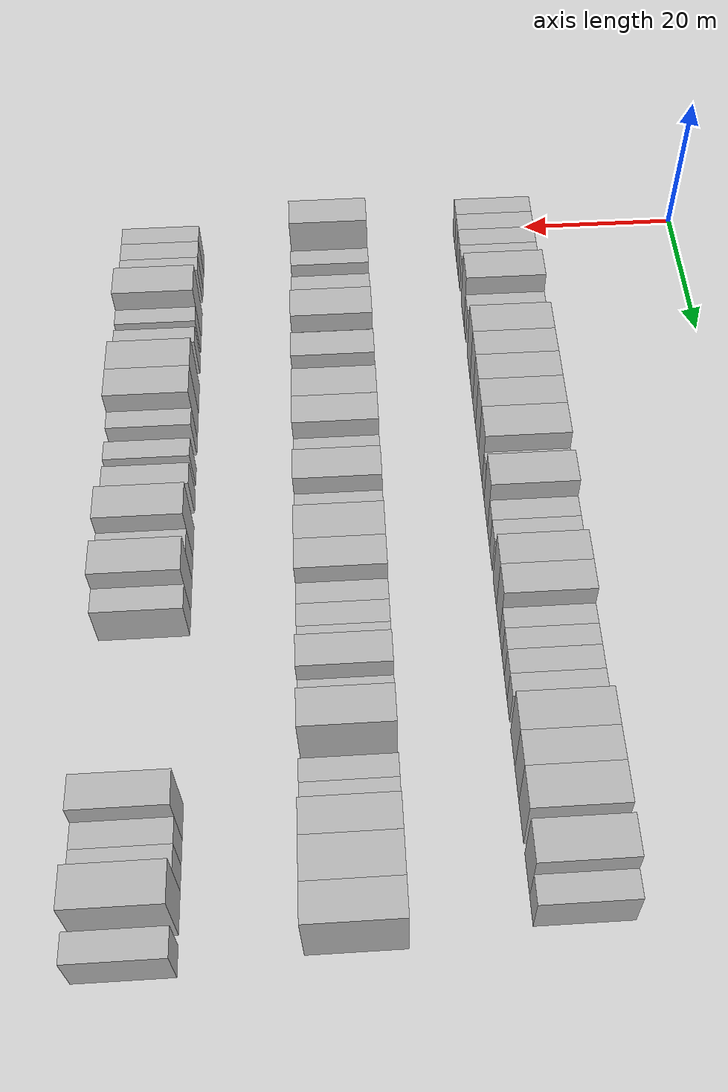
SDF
<sdf version="1.6">
 <world name="default">
  <model name="building_93">
   <static>1</static>
   <pose>25.0000 1.7924 0 0.000000 0.000000 0.000000</pose>
   <link name="link">
    <pose>0 0 3.00 0 0 0</pose>
    <collision name="collision"><geometry><box><size>10.0000 2.9085 6.0000</size></box></geometry></collision>
    <visual name="visual">
     <cast_shadows>0</cast_shadows>
     <geometry><box><size>10.0000 2.9085 6.0000</size></box></geometry>
     <material>
      <script>
       <uri>model://HANNAS_wall/materials/scripts</uri>
       <uri>model://HANNAS_wall/materials/textures</uri>
       <name>vrc/HANNAS_wall</name>
      </script>
     </material>
    </visual>
   </link>
  </model>
  <model name="building_94">
   <static>1</static>
   <pose>25.0000 4.6945 0 0.000000 0.000000 0.000000</pose>
   <link name="link">
    <pose>0 0 3.00 0 0 0</pose>
    <collision name="collision"><geometry><box><size>10.0000 2.8958 6.0000</size></box></geometry></collision>
    <visual name="visual">
     <cast_shadows>0</cast_shadows>
     <geometry><box><size>10.0000 2.8958 6.0000</size></box></geometry>
     <material>
      <script>
       <uri>model://HANNAS_wall/materials/scripts</uri>
       <uri>model://HANNAS_wall/materials/textures</uri>
       <name>vrc/HANNAS_wall</name>
      </script>
     </material>
    </visual>
   </link>
  </model>
  <model name="building_95">
   <static>1</static>
   <pose>25.0000 7.5774 0 0.000000 0.000000 0.000000</pose>
   <link name="link">
    <pose>0 0 3.00 0 0 0</pose>
    <collision name="collision"><geometry><box><size>10.0000 2.8701 6.0000</size></box></geometry></collision>
    <visual name="visual">
     <cast_shadows>0</cast_shadows>
     <geometry><box><size>10.0000 2.8701 6.0000</size></box></geometry>
     <material>
      <script>
       <uri>model://HANNAS_wall/materials/scripts</uri>
       <uri>model://HANNAS_wall/materials/textures</uri>
       <name>vrc/HANNAS_wall</name>
      </script>
     </material>
    </visual>
   </link>
  </model>
  <model name="building_96">
   <static>1</static>
   <pose>25.0000 10.2532 0 0.000000 0.000000 0.000000</pose>
   <link name="link">
    <pose>0 0 3.00 0 0 0</pose>
    <collision name="collision"><geometry><box><size>10.0000 2.4816 6.0000</size></box></geometry></collision>
    <visual name="visual">
     <cast_shadows>0</cast_shadows>
     <geometry><box><size>10.0000 2.4816 6.0000</size></box></geometry>
     <material>
      <script>
       <uri>model://HANNAS_wall/materials/scripts</uri>
       <uri>model://HANNAS_wall/materials/textures</uri>
       <name>vrc/HANNAS_wall</name>
      </script>
     </material>
    </visual>
   </link>
  </model>
  <model name="building_97">
   <static>1</static>
   <pose>25.0000 15.6917 0 0.000000 0.000000 0.000000</pose>
   <link name="link">
    <pose>0 0 4.50 0 0 0</pose>
    <collision name="collision"><geometry><box><size>10.0000 4.3954 9.0000</size></box></geometry></collision>
    <visual name="visual">
     <cast_shadows>0</cast_shadows>
     <geometry><box><size>10.0000 4.3954 9.0000</size></box></geometry>
     <material>
      <script>
       <uri>model://HANNAS_wall/materials/scripts</uri>
       <uri>model://HANNAS_wall/materials/textures</uri>
       <name>vrc/HANNAS_wall</name>
      </script>
     </material>
    </visual>
   </link>
  </model>
  <model name="building_98">
   <static>1</static>
   <pose>25.0000 19.2215 0 0.000000 0.000000 0.000000</pose>
   <link name="link">
    <pose>0 0 3.00 0 0 0</pose>
    <collision name="collision"><geometry><box><size>10.0000 2.6641 6.0000</size></box></geometry></collision>
    <visual name="visual">
     <cast_shadows>0</cast_shadows>
     <geometry><box><size>10.0000 2.6641 6.0000</size></box></geometry>
     <material>
      <script>
       <uri>model://HANNAS_wall/materials/scripts</uri>
       <uri>model://HANNAS_wall/materials/textures</uri>
       <name>vrc/HANNAS_wall</name>
      </script>
     </material>
    </visual>
   </link>
  </model>
  <model name="building_99">
   <static>1</static>
   <pose>25.0000 24.6875 0 0.000000 0.000000 0.000000</pose>
   <link name="link">
    <pose>0 0 4.50 0 0 0</pose>
    <collision name="collision"><geometry><box><size>10.0000 4.2679 9.0000</size></box></geometry></collision>
    <visual name="visual">
     <cast_shadows>0</cast_shadows>
     <geometry><box><size>10.0000 4.2679 9.0000</size></box></geometry>
     <material>
      <script>
       <uri>model://HANNAS_wall/materials/scripts</uri>
       <uri>model://HANNAS_wall/materials/textures</uri>
       <name>vrc/HANNAS_wall</name>
      </script>
     </material>
    </visual>
   </link>
  </model>
  <model name="building_100">
   <static>1</static>
   <pose>25.0000 28.6731 0 0.000000 0.000000 0.000000</pose>
   <link name="link">
    <pose>0 0 4.50 0 0 0</pose>
    <collision name="collision"><geometry><box><size>10.0000 3.7032 9.0000</size></box></geometry></collision>
    <visual name="visual">
     <cast_shadows>0</cast_shadows>
     <geometry><box><size>10.0000 3.7032 9.0000</size></box></geometry>
     <material>
      <script>
       <uri>model://HANNAS_wall/materials/scripts</uri>
       <uri>model://HANNAS_wall/materials/textures</uri>
       <name>vrc/HANNAS_wall</name>
      </script>
     </material>
    </visual>
   </link>
  </model>
  <model name="building_101">
   <static>1</static>
   <pose>25.0000 32.4304 0 0.000000 0.000000 0.000000</pose>
   <link name="link">
    <pose>0 0 4.50 0 0 0</pose>
    <collision name="collision"><geometry><box><size>10.0000 3.8114 9.0000</size></box></geometry></collision>
    <visual name="visual">
     <cast_shadows>0</cast_shadows>
     <geometry><box><size>10.0000 3.8114 9.0000</size></box></geometry>
     <material>
      <script>
       <uri>model://HANNAS_wall/materials/scripts</uri>
       <uri>model://HANNAS_wall/materials/textures</uri>
       <name>vrc/HANNAS_wall</name>
      </script>
     </material>
    </visual>
   </link>
  </model>
  <model name="building_102">
   <static>1</static>
   <pose>25.0000 36.4106 0 0.000000 0.000000 0.000000</pose>
   <link name="link">
    <pose>0 0 4.50 0 0 0</pose>
    <collision name="collision"><geometry><box><size>10.0000 4.1490 9.0000</size></box></geometry></collision>
    <visual name="visual">
     <cast_shadows>0</cast_shadows>
     <geometry><box><size>10.0000 4.1490 9.0000</size></box></geometry>
     <material>
      <script>
       <uri>model://HANNAS_wall/materials/scripts</uri>
       <uri>model://HANNAS_wall/materials/textures</uri>
       <name>vrc/HANNAS_wall</name>
      </script>
     </material>
    </visual>
   </link>
  </model>
  <model name="building_103">
   <static>1</static>
   <pose>25.0000 40.6841 0 0.000000 0.000000 0.000000</pose>
   <link name="link">
    <pose>0 0 4.50 0 0 0</pose>
    <collision name="collision"><geometry><box><size>10.0000 4.3981 9.0000</size></box></geometry></collision>
    <visual name="visual">
     <cast_shadows>0</cast_shadows>
     <geometry><box><size>10.0000 4.3981 9.0000</size></box></geometry>
     <material>
      <script>
       <uri>model://HANNAS_wall/materials/scripts</uri>
       <uri>model://HANNAS_wall/materials/textures</uri>
       <name>vrc/HANNAS_wall</name>
      </script>
     </material>
    </visual>
   </link>
  </model>
  <model name="building_104">
   <static>1</static>
   <pose>25.0000 44.1431 0 0.000000 0.000000 0.000000</pose>
   <link name="link">
    <pose>0 0 3.00 0 0 0</pose>
    <collision name="collision"><geometry><box><size>10.0000 2.5199 6.0000</size></box></geometry></collision>
    <visual name="visual">
     <cast_shadows>0</cast_shadows>
     <geometry><box><size>10.0000 2.5199 6.0000</size></box></geometry>
     <material>
      <script>
       <uri>model://HANNAS_wall/materials/scripts</uri>
       <uri>model://HANNAS_wall/materials/textures</uri>
       <name>vrc/HANNAS_wall</name>
      </script>
     </material>
    </visual>
   </link>
  </model>
  <model name="building_105">
   <static>1</static>
   <pose>25.0000 47.5374 0 0.000000 0.000000 0.000000</pose>
   <link name="link">
    <pose>0 0 4.50 0 0 0</pose>
    <collision name="collision"><geometry><box><size>10.0000 4.2687 9.0000</size></box></geometry></collision>
    <visual name="visual">
     <cast_shadows>0</cast_shadows>
     <geometry><box><size>10.0000 4.2687 9.0000</size></box></geometry>
     <material>
      <script>
       <uri>model://HANNAS_wall/materials/scripts</uri>
       <uri>model://HANNAS_wall/materials/textures</uri>
       <name>vrc/HANNAS_wall</name>
      </script>
     </material>
    </visual>
   </link>
  </model>
  <model name="building_106">
   <static>1</static>
   <pose>25.0000 51.0180 0 0.000000 0.000000 0.000000</pose>
   <link name="link">
    <pose>0 0 3.00 0 0 0</pose>
    <collision name="collision"><geometry><box><size>10.0000 2.6924 6.0000</size></box></geometry></collision>
    <visual name="visual">
     <cast_shadows>0</cast_shadows>
     <geometry><box><size>10.0000 2.6924 6.0000</size></box></geometry>
     <material>
      <script>
       <uri>model://HANNAS_wall/materials/scripts</uri>
       <uri>model://HANNAS_wall/materials/textures</uri>
       <name>vrc/HANNAS_wall</name>
      </script>
     </material>
    </visual>
   </link>
  </model>
  <model name="building_107">
   <static>1</static>
   <pose>25.0000 53.8034 0 0.000000 0.000000 0.000000</pose>
   <link name="link">
    <pose>0 0 3.00 0 0 0</pose>
    <collision name="collision"><geometry><box><size>10.0000 2.8785 6.0000</size></box></geometry></collision>
    <visual name="visual">
     <cast_shadows>0</cast_shadows>
     <geometry><box><size>10.0000 2.8785 6.0000</size></box></geometry>
     <material>
      <script>
       <uri>model://HANNAS_wall/materials/scripts</uri>
       <uri>model://HANNAS_wall/materials/textures</uri>
       <name>vrc/HANNAS_wall</name>
      </script>
     </material>
    </visual>
   </link>
  </model>
  <model name="building_108">
   <static>1</static>
   <pose>25.0000 58.1282 0 0.000000 0.000000 0.000000</pose>
   <link name="link">
    <pose>0 0 4.50 0 0 0</pose>
    <collision name="collision"><geometry><box><size>10.0000 3.7711 9.0000</size></box></geometry></collision>
    <visual name="visual">
     <cast_shadows>0</cast_shadows>
     <geometry><box><size>10.0000 3.7711 9.0000</size></box></geometry>
     <material>
      <script>
       <uri>model://HANNAS_wall/materials/scripts</uri>
       <uri>model://HANNAS_wall/materials/textures</uri>
       <name>vrc/HANNAS_wall</name>
      </script>
     </material>
    </visual>
   </link>
  </model>
  <model name="building_109">
   <static>1</static>
   <pose>25.0000 61.8453 0 0.000000 0.000000 0.000000</pose>
   <link name="link">
    <pose>0 0 4.50 0 0 0</pose>
    <collision name="collision"><geometry><box><size>10.0000 3.6630 9.0000</size></box></geometry></collision>
    <visual name="visual">
     <cast_shadows>0</cast_shadows>
     <geometry><box><size>10.0000 3.6630 9.0000</size></box></geometry>
     <material>
      <script>
       <uri>model://HANNAS_wall/materials/scripts</uri>
       <uri>model://HANNAS_wall/materials/textures</uri>
       <name>vrc/HANNAS_wall</name>
      </script>
     </material>
    </visual>
   </link>
  </model>
  <model name="building_110">
   <static>1</static>
   <pose>25.0000 64.9099 0 0.000000 0.000000 0.000000</pose>
   <link name="link">
    <pose>0 0 3.00 0 0 0</pose>
    <collision name="collision"><geometry><box><size>10.0000 2.4662 6.0000</size></box></geometry></collision>
    <visual name="visual">
     <cast_shadows>0</cast_shadows>
     <geometry><box><size>10.0000 2.4662 6.0000</size></box></geometry>
     <material>
      <script>
       <uri>model://HANNAS_wall/materials/scripts</uri>
       <uri>model://HANNAS_wall/materials/textures</uri>
       <name>vrc/HANNAS_wall</name>
      </script>
     </material>
    </visual>
   </link>
  </model>
  <model name="building_111">
   <static>1</static>
   <pose>25.0000 67.4064 0 0.000000 0.000000 0.000000</pose>
   <link name="link">
    <pose>0 0 3.00 0 0 0</pose>
    <collision name="collision"><geometry><box><size>10.0000 2.5268 6.0000</size></box></geometry></collision>
    <visual name="visual">
     <cast_shadows>0</cast_shadows>
     <geometry><box><size>10.0000 2.5268 6.0000</size></box></geometry>
     <material>
      <script>
       <uri>model://HANNAS_wall/materials/scripts</uri>
       <uri>model://HANNAS_wall/materials/textures</uri>
       <name>vrc/HANNAS_wall</name>
      </script>
     </material>
    </visual>
   </link>
  </model>
  <model name="building_112">
   <static>1</static>
   <pose>25.0000 70.0747 0 0.000000 0.000000 0.000000</pose>
   <link name="link">
    <pose>0 0 3.00 0 0 0</pose>
    <collision name="collision"><geometry><box><size>10.0000 2.8097 6.0000</size></box></geometry></collision>
    <visual name="visual">
     <cast_shadows>0</cast_shadows>
     <geometry><box><size>10.0000 2.8097 6.0000</size></box></geometry>
     <material>
      <script>
       <uri>model://HANNAS_wall/materials/scripts</uri>
       <uri>model://HANNAS_wall/materials/textures</uri>
       <name>vrc/HANNAS_wall</name>
      </script>
     </material>
    </visual>
   </link>
  </model>
  <model name="building_113">
   <static>1</static>
   <pose>25.0000 72.7786 0 0.000000 0.000000 0.000000</pose>
   <link name="link">
    <pose>0 0 3.00 0 0 0</pose>
    <collision name="collision"><geometry><box><size>10.0000 2.5982 6.0000</size></box></geometry></collision>
    <visual name="visual">
     <cast_shadows>0</cast_shadows>
     <geometry><box><size>10.0000 2.5982 6.0000</size></box></geometry>
     <material>
      <script>
       <uri>model://HANNAS_wall/materials/scripts</uri>
       <uri>model://HANNAS_wall/materials/textures</uri>
       <name>vrc/HANNAS_wall</name>
      </script>
     </material>
    </visual>
   </link>
  </model>
  <model name="building_114">
   <static>1</static>
   <pose>25.0000 77.1777 0 0.000000 0.000000 0.000000</pose>
   <link name="link">
    <pose>0 0 4.50 0 0 0</pose>
    <collision name="collision"><geometry><box><size>10.0000 4.2001 9.0000</size></box></geometry></collision>
    <visual name="visual">
     <cast_shadows>0</cast_shadows>
     <geometry><box><size>10.0000 4.2001 9.0000</size></box></geometry>
     <material>
      <script>
       <uri>model://HANNAS_wall/materials/scripts</uri>
       <uri>model://HANNAS_wall/materials/textures</uri>
       <name>vrc/HANNAS_wall</name>
      </script>
     </material>
    </visual>
   </link>
  </model>
  <model name="building_115">
   <static>1</static>
   <pose>25.0000 81.1387 0 0.000000 0.000000 0.000000</pose>
   <link name="link">
    <pose>0 0 4.50 0 0 0</pose>
    <collision name="collision"><geometry><box><size>10.0000 3.7220 9.0000</size></box></geometry></collision>
    <visual name="visual">
     <cast_shadows>0</cast_shadows>
     <geometry><box><size>10.0000 3.7220 9.0000</size></box></geometry>
     <material>
      <script>
       <uri>model://HANNAS_wall/materials/scripts</uri>
       <uri>model://HANNAS_wall/materials/textures</uri>
       <name>vrc/HANNAS_wall</name>
      </script>
     </material>
    </visual>
   </link>
  </model>
  <model name="building_116">
   <static>1</static>
   <pose>25.0000 85.1776 0 0.000000 0.000000 0.000000</pose>
   <link name="link">
    <pose>0 0 4.50 0 0 0</pose>
    <collision name="collision"><geometry><box><size>10.0000 4.3557 9.0000</size></box></geometry></collision>
    <visual name="visual">
     <cast_shadows>0</cast_shadows>
     <geometry><box><size>10.0000 4.3557 9.0000</size></box></geometry>
     <material>
      <script>
       <uri>model://HANNAS_wall/materials/scripts</uri>
       <uri>model://HANNAS_wall/materials/textures</uri>
       <name>vrc/HANNAS_wall</name>
      </script>
     </material>
    </visual>
   </link>
  </model>
  <model name="building_117">
   <static>1</static>
   <pose>25.0000 90.5074 0 0.000000 0.000000 0.000000</pose>
   <link name="link">
    <pose>0 0 4.50 0 0 0</pose>
    <collision name="collision"><geometry><box><size>10.0000 4.3039 9.0000</size></box></geometry></collision>
    <visual name="visual">
     <cast_shadows>0</cast_shadows>
     <geometry><box><size>10.0000 4.3039 9.0000</size></box></geometry>
     <material>
      <script>
       <uri>model://HANNAS_wall/materials/scripts</uri>
       <uri>model://HANNAS_wall/materials/textures</uri>
       <name>vrc/HANNAS_wall</name>
      </script>
     </material>
    </visual>
   </link>
  </model>
  <model name="building_118">
   <static>1</static>
   <pose>25.0000 94.1217 0 0.000000 0.000000 0.000000</pose>
   <link name="link">
    <pose>0 0 3.00 0 0 0</pose>
    <collision name="collision"><geometry><box><size>10.0000 2.9247 6.0000</size></box></geometry></collision>
    <visual name="visual">
     <cast_shadows>0</cast_shadows>
     <geometry><box><size>10.0000 2.9247 6.0000</size></box></geometry>
     <material>
      <script>
       <uri>model://HANNAS_wall/materials/scripts</uri>
       <uri>model://HANNAS_wall/materials/textures</uri>
       <name>vrc/HANNAS_wall</name>
      </script>
     </material>
    </visual>
   </link>
  </model>
  <model name="building_285">
   <static>1</static>
   <pose>47.0000 1.1198 0 0.000000 0.000000 0.000000</pose>
   <link name="link">
    <pose>0 0 3.00 0 0 0</pose>
    <collision name="collision"><geometry><box><size>10.0000 2.9398 6.0000</size></box></geometry></collision>
    <visual name="visual">
     <cast_shadows>0</cast_shadows>
     <geometry><box><size>10.0000 2.9398 6.0000</size></box></geometry>
     <material>
      <script>
       <uri>model://HANNAS_wall/materials/scripts</uri>
       <uri>model://HANNAS_wall/materials/textures</uri>
       <name>vrc/HANNAS_wall</name>
      </script>
     </material>
    </visual>
   </link>
  </model>
  <model name="building_286">
   <static>1</static>
   <pose>47.0000 4.6898 0 0.000000 0.000000 0.000000</pose>
   <link name="link">
    <pose>0 0 4.50 0 0 0</pose>
    <collision name="collision"><geometry><box><size>10.0000 4.2001 9.0000</size></box></geometry></collision>
    <visual name="visual">
     <cast_shadows>0</cast_shadows>
     <geometry><box><size>10.0000 4.2001 9.0000</size></box></geometry>
     <material>
      <script>
       <uri>model://HANNAS_wall/materials/scripts</uri>
       <uri>model://HANNAS_wall/materials/textures</uri>
       <name>vrc/HANNAS_wall</name>
      </script>
     </material>
    </visual>
   </link>
  </model>
  <model name="building_287">
   <static>1</static>
   <pose>47.0000 10.0824 0 0.000000 0.000000 0.000000</pose>
   <link name="link">
    <pose>0 0 3.00 0 0 0</pose>
    <collision name="collision"><geometry><box><size>10.0000 2.5852 6.0000</size></box></geometry></collision>
    <visual name="visual">
     <cast_shadows>0</cast_shadows>
     <geometry><box><size>10.0000 2.5852 6.0000</size></box></geometry>
     <material>
      <script>
       <uri>model://HANNAS_wall/materials/scripts</uri>
       <uri>model://HANNAS_wall/materials/textures</uri>
       <name>vrc/HANNAS_wall</name>
      </script>
     </material>
    </visual>
   </link>
  </model>
  <model name="building_288">
   <static>1</static>
   <pose>47.0000 14.7511 0 0.000000 0.000000 0.000000</pose>
   <link name="link">
    <pose>0 0 3.00 0 0 0</pose>
    <collision name="collision"><geometry><box><size>10.0000 2.7521 6.0000</size></box></geometry></collision>
    <visual name="visual">
     <cast_shadows>0</cast_shadows>
     <geometry><box><size>10.0000 2.7521 6.0000</size></box></geometry>
     <material>
      <script>
       <uri>model://HANNAS_wall/materials/scripts</uri>
       <uri>model://HANNAS_wall/materials/textures</uri>
       <name>vrc/HANNAS_wall</name>
      </script>
     </material>
    </visual>
   </link>
  </model>
  <model name="building_289">
   <static>1</static>
   <pose>47.0000 17.3611 0 0.000000 0.000000 0.000000</pose>
   <link name="link">
    <pose>0 0 3.00 0 0 0</pose>
    <collision name="collision"><geometry><box><size>10.0000 2.4678 6.0000</size></box></geometry></collision>
    <visual name="visual">
     <cast_shadows>0</cast_shadows>
     <geometry><box><size>10.0000 2.4678 6.0000</size></box></geometry>
     <material>
      <script>
       <uri>model://HANNAS_wall/materials/scripts</uri>
       <uri>model://HANNAS_wall/materials/textures</uri>
       <name>vrc/HANNAS_wall</name>
      </script>
     </material>
    </visual>
   </link>
  </model>
  <model name="building_290">
   <static>1</static>
   <pose>47.0000 20.7779 0 0.000000 0.000000 0.000000</pose>
   <link name="link">
    <pose>0 0 4.50 0 0 0</pose>
    <collision name="collision"><geometry><box><size>10.0000 4.3657 9.0000</size></box></geometry></collision>
    <visual name="visual">
     <cast_shadows>0</cast_shadows>
     <geometry><box><size>10.0000 4.3657 9.0000</size></box></geometry>
     <material>
      <script>
       <uri>model://HANNAS_wall/materials/scripts</uri>
       <uri>model://HANNAS_wall/materials/textures</uri>
       <name>vrc/HANNAS_wall</name>
      </script>
     </material>
    </visual>
   </link>
  </model>
  <model name="building_291">
   <static>1</static>
   <pose>47.0000 24.3346 0 0.000000 0.000000 0.000000</pose>
   <link name="link">
    <pose>0 0 3.00 0 0 0</pose>
    <collision name="collision"><geometry><box><size>10.0000 2.7478 6.0000</size></box></geometry></collision>
    <visual name="visual">
     <cast_shadows>0</cast_shadows>
     <geometry><box><size>10.0000 2.7478 6.0000</size></box></geometry>
     <material>
      <script>
       <uri>model://HANNAS_wall/materials/scripts</uri>
       <uri>model://HANNAS_wall/materials/textures</uri>
       <name>vrc/HANNAS_wall</name>
      </script>
     </material>
    </visual>
   </link>
  </model>
  <model name="building_292">
   <static>1</static>
   <pose>47.0000 27.5520 0 0.000000 0.000000 0.000000</pose>
   <link name="link">
    <pose>0 0 4.50 0 0 0</pose>
    <collision name="collision"><geometry><box><size>10.0000 3.6870 9.0000</size></box></geometry></collision>
    <visual name="visual">
     <cast_shadows>0</cast_shadows>
     <geometry><box><size>10.0000 3.6870 9.0000</size></box></geometry>
     <material>
      <script>
       <uri>model://HANNAS_wall/materials/scripts</uri>
       <uri>model://HANNAS_wall/materials/textures</uri>
       <name>vrc/HANNAS_wall</name>
      </script>
     </material>
    </visual>
   </link>
  </model>
  <model name="building_293">
   <static>1</static>
   <pose>47.0000 33.4994 0 0.000000 0.000000 0.000000</pose>
   <link name="link">
    <pose>0 0 4.50 0 0 0</pose>
    <collision name="collision"><geometry><box><size>10.0000 4.2079 9.0000</size></box></geometry></collision>
    <visual name="visual">
     <cast_shadows>0</cast_shadows>
     <geometry><box><size>10.0000 4.2079 9.0000</size></box></geometry>
     <material>
      <script>
       <uri>model://HANNAS_wall/materials/scripts</uri>
       <uri>model://HANNAS_wall/materials/textures</uri>
       <name>vrc/HANNAS_wall</name>
      </script>
     </material>
    </visual>
   </link>
  </model>
  <model name="building_294">
   <static>1</static>
   <pose>47.0000 37.5770 0 0.000000 0.000000 0.000000</pose>
   <link name="link">
    <pose>0 0 4.50 0 0 0</pose>
    <collision name="collision"><geometry><box><size>10.0000 3.9472 9.0000</size></box></geometry></collision>
    <visual name="visual">
     <cast_shadows>0</cast_shadows>
     <geometry><box><size>10.0000 3.9472 9.0000</size></box></geometry>
     <material>
      <script>
       <uri>model://HANNAS_wall/materials/scripts</uri>
       <uri>model://HANNAS_wall/materials/textures</uri>
       <name>vrc/HANNAS_wall</name>
      </script>
     </material>
    </visual>
   </link>
  </model>
  <model name="building_295">
   <static>1</static>
   <pose>47.0000 40.9795 0 0.000000 0.000000 0.000000</pose>
   <link name="link">
    <pose>0 0 3.00 0 0 0</pose>
    <collision name="collision"><geometry><box><size>10.0000 2.8578 6.0000</size></box></geometry></collision>
    <visual name="visual">
     <cast_shadows>0</cast_shadows>
     <geometry><box><size>10.0000 2.8578 6.0000</size></box></geometry>
     <material>
      <script>
       <uri>model://HANNAS_wall/materials/scripts</uri>
       <uri>model://HANNAS_wall/materials/textures</uri>
       <name>vrc/HANNAS_wall</name>
      </script>
     </material>
    </visual>
   </link>
  </model>
  <model name="building_296">
   <static>1</static>
   <pose>47.0000 45.4443 0 0.000000 0.000000 0.000000</pose>
   <link name="link">
    <pose>0 0 4.50 0 0 0</pose>
    <collision name="collision"><geometry><box><size>10.0000 4.0717 9.0000</size></box></geometry></collision>
    <visual name="visual">
     <cast_shadows>0</cast_shadows>
     <geometry><box><size>10.0000 4.0717 9.0000</size></box></geometry>
     <material>
      <script>
       <uri>model://HANNAS_wall/materials/scripts</uri>
       <uri>model://HANNAS_wall/materials/textures</uri>
       <name>vrc/HANNAS_wall</name>
      </script>
     </material>
    </visual>
   </link>
  </model>
  <model name="building_297">
   <static>1</static>
   <pose>47.0000 48.7757 0 0.000000 0.000000 0.000000</pose>
   <link name="link">
    <pose>0 0 3.00 0 0 0</pose>
    <collision name="collision"><geometry><box><size>10.0000 2.5913 6.0000</size></box></geometry></collision>
    <visual name="visual">
     <cast_shadows>0</cast_shadows>
     <geometry><box><size>10.0000 2.5913 6.0000</size></box></geometry>
     <material>
      <script>
       <uri>model://HANNAS_wall/materials/scripts</uri>
       <uri>model://HANNAS_wall/materials/textures</uri>
       <name>vrc/HANNAS_wall</name>
      </script>
     </material>
    </visual>
   </link>
  </model>
  <model name="building_298">
   <static>1</static>
   <pose>47.0000 53.2677 0 0.000000 0.000000 0.000000</pose>
   <link name="link">
    <pose>0 0 4.50 0 0 0</pose>
    <collision name="collision"><geometry><box><size>10.0000 4.3926 9.0000</size></box></geometry></collision>
    <visual name="visual">
     <cast_shadows>0</cast_shadows>
     <geometry><box><size>10.0000 4.3926 9.0000</size></box></geometry>
     <material>
      <script>
       <uri>model://HANNAS_wall/materials/scripts</uri>
       <uri>model://HANNAS_wall/materials/textures</uri>
       <name>vrc/HANNAS_wall</name>
      </script>
     </material>
    </visual>
   </link>
  </model>
  <model name="building_299">
   <static>1</static>
   <pose>47.0000 57.3486 0 0.000000 0.000000 0.000000</pose>
   <link name="link">
    <pose>0 0 4.50 0 0 0</pose>
    <collision name="collision"><geometry><box><size>10.0000 3.7692 9.0000</size></box></geometry></collision>
    <visual name="visual">
     <cast_shadows>0</cast_shadows>
     <geometry><box><size>10.0000 3.7692 9.0000</size></box></geometry>
     <material>
      <script>
       <uri>model://HANNAS_wall/materials/scripts</uri>
       <uri>model://HANNAS_wall/materials/textures</uri>
       <name>vrc/HANNAS_wall</name>
      </script>
     </material>
    </visual>
   </link>
  </model>
  <model name="building_300">
   <static>1</static>
   <pose>47.0000 60.5270 0 0.000000 0.000000 0.000000</pose>
   <link name="link">
    <pose>0 0 3.00 0 0 0</pose>
    <collision name="collision"><geometry><box><size>10.0000 2.5878 6.0000</size></box></geometry></collision>
    <visual name="visual">
     <cast_shadows>0</cast_shadows>
     <geometry><box><size>10.0000 2.5878 6.0000</size></box></geometry>
     <material>
      <script>
       <uri>model://HANNAS_wall/materials/scripts</uri>
       <uri>model://HANNAS_wall/materials/textures</uri>
       <name>vrc/HANNAS_wall</name>
      </script>
     </material>
    </visual>
   </link>
  </model>
  <model name="building_301">
   <static>1</static>
   <pose>47.0000 63.2005 0 0.000000 0.000000 0.000000</pose>
   <link name="link">
    <pose>0 0 3.00 0 0 0</pose>
    <collision name="collision"><geometry><box><size>10.0000 2.7592 6.0000</size></box></geometry></collision>
    <visual name="visual">
     <cast_shadows>0</cast_shadows>
     <geometry><box><size>10.0000 2.7592 6.0000</size></box></geometry>
     <material>
      <script>
       <uri>model://HANNAS_wall/materials/scripts</uri>
       <uri>model://HANNAS_wall/materials/textures</uri>
       <name>vrc/HANNAS_wall</name>
      </script>
     </material>
    </visual>
   </link>
  </model>
  <model name="building_302">
   <static>1</static>
   <pose>47.0000 65.9256 0 0.000000 0.000000 0.000000</pose>
   <link name="link">
    <pose>0 0 3.00 0 0 0</pose>
    <collision name="collision"><geometry><box><size>10.0000 2.6909 6.0000</size></box></geometry></collision>
    <visual name="visual">
     <cast_shadows>0</cast_shadows>
     <geometry><box><size>10.0000 2.6909 6.0000</size></box></geometry>
     <material>
      <script>
       <uri>model://HANNAS_wall/materials/scripts</uri>
       <uri>model://HANNAS_wall/materials/textures</uri>
       <name>vrc/HANNAS_wall</name>
      </script>
     </material>
    </visual>
   </link>
  </model>
  <model name="building_303">
   <static>1</static>
   <pose>47.0000 69.0927 0 0.000000 0.000000 0.000000</pose>
   <link name="link">
    <pose>0 0 4.50 0 0 0</pose>
    <collision name="collision"><geometry><box><size>10.0000 3.6434 9.0000</size></box></geometry></collision>
    <visual name="visual">
     <cast_shadows>0</cast_shadows>
     <geometry><box><size>10.0000 3.6434 9.0000</size></box></geometry>
     <material>
      <script>
       <uri>model://HANNAS_wall/materials/scripts</uri>
       <uri>model://HANNAS_wall/materials/textures</uri>
       <name>vrc/HANNAS_wall</name>
      </script>
     </material>
    </visual>
   </link>
  </model>
  <model name="building_304">
   <static>1</static>
   <pose>47.0000 72.1386 0 0.000000 0.000000 0.000000</pose>
   <link name="link">
    <pose>0 0 3.00 0 0 0</pose>
    <collision name="collision"><geometry><box><size>10.0000 2.4483 6.0000</size></box></geometry></collision>
    <visual name="visual">
     <cast_shadows>0</cast_shadows>
     <geometry><box><size>10.0000 2.4483 6.0000</size></box></geometry>
     <material>
      <script>
       <uri>model://HANNAS_wall/materials/scripts</uri>
       <uri>model://HANNAS_wall/materials/textures</uri>
       <name>vrc/HANNAS_wall</name>
      </script>
     </material>
    </visual>
   </link>
  </model>
  <model name="building_305">
   <static>1</static>
   <pose>47.0000 75.4647 0 0.000000 0.000000 0.000000</pose>
   <link name="link">
    <pose>0 0 4.50 0 0 0</pose>
    <collision name="collision"><geometry><box><size>10.0000 4.2039 9.0000</size></box></geometry></collision>
    <visual name="visual">
     <cast_shadows>0</cast_shadows>
     <geometry><box><size>10.0000 4.2039 9.0000</size></box></geometry>
     <material>
      <script>
       <uri>model://HANNAS_wall/materials/scripts</uri>
       <uri>model://HANNAS_wall/materials/textures</uri>
       <name>vrc/HANNAS_wall</name>
      </script>
     </material>
    </visual>
   </link>
  </model>
  <model name="building_306">
   <static>1</static>
   <pose>47.0000 80.8245 0 0.000000 0.000000 0.000000</pose>
   <link name="link">
    <pose>0 0 3.00 0 0 0</pose>
    <collision name="collision"><geometry><box><size>10.0000 2.5157 6.0000</size></box></geometry></collision>
    <visual name="visual">
     <cast_shadows>0</cast_shadows>
     <geometry><box><size>10.0000 2.5157 6.0000</size></box></geometry>
     <material>
      <script>
       <uri>model://HANNAS_wall/materials/scripts</uri>
       <uri>model://HANNAS_wall/materials/textures</uri>
       <name>vrc/HANNAS_wall</name>
      </script>
     </material>
    </visual>
   </link>
  </model>
  <model name="building_307">
   <static>1</static>
   <pose>47.0000 83.4782 0 0.000000 0.000000 0.000000</pose>
   <link name="link">
    <pose>0 0 3.00 0 0 0</pose>
    <collision name="collision"><geometry><box><size>10.0000 2.7915 6.0000</size></box></geometry></collision>
    <visual name="visual">
     <cast_shadows>0</cast_shadows>
     <geometry><box><size>10.0000 2.7915 6.0000</size></box></geometry>
     <material>
      <script>
       <uri>model://HANNAS_wall/materials/scripts</uri>
       <uri>model://HANNAS_wall/materials/textures</uri>
       <name>vrc/HANNAS_wall</name>
      </script>
     </material>
    </visual>
   </link>
  </model>
  <model name="building_308">
   <static>1</static>
   <pose>47.0000 86.7321 0 0.000000 0.000000 0.000000</pose>
   <link name="link">
    <pose>0 0 4.50 0 0 0</pose>
    <collision name="collision"><geometry><box><size>10.0000 3.7165 9.0000</size></box></geometry></collision>
    <visual name="visual">
     <cast_shadows>0</cast_shadows>
     <geometry><box><size>10.0000 3.7165 9.0000</size></box></geometry>
     <material>
      <script>
       <uri>model://HANNAS_wall/materials/scripts</uri>
       <uri>model://HANNAS_wall/materials/textures</uri>
       <name>vrc/HANNAS_wall</name>
      </script>
     </material>
    </visual>
   </link>
  </model>
  <model name="building_309">
   <static>1</static>
   <pose>47.0000 90.7999 0 0.000000 0.000000 0.000000</pose>
   <link name="link">
    <pose>0 0 4.50 0 0 0</pose>
    <collision name="collision"><geometry><box><size>10.0000 4.4189 9.0000</size></box></geometry></collision>
    <visual name="visual">
     <cast_shadows>0</cast_shadows>
     <geometry><box><size>10.0000 4.4189 9.0000</size></box></geometry>
     <material>
      <script>
       <uri>model://HANNAS_wall/materials/scripts</uri>
       <uri>model://HANNAS_wall/materials/textures</uri>
       <name>vrc/HANNAS_wall</name>
      </script>
     </material>
    </visual>
   </link>
  </model>
  <model name="building_310">
   <static>1</static>
   <pose>47.0000 94.9962 0 0.000000 0.000000 0.000000</pose>
   <link name="link">
    <pose>0 0 4.50 0 0 0</pose>
    <collision name="collision"><geometry><box><size>10.0000 3.9737 9.0000</size></box></geometry></collision>
    <visual name="visual">
     <cast_shadows>0</cast_shadows>
     <geometry><box><size>10.0000 3.9737 9.0000</size></box></geometry>
     <material>
      <script>
       <uri>model://HANNAS_wall/materials/scripts</uri>
       <uri>model://HANNAS_wall/materials/textures</uri>
       <name>vrc/HANNAS_wall</name>
      </script>
     </material>
    </visual>
   </link>
  </model>
  <model name="building_485">
   <static>1</static>
   <pose>69.0000 4.7719 0 0.000000 0.000000 0.000000</pose>
   <link name="link">
    <pose>0 0 3.00 0 0 0</pose>
    <collision name="collision"><geometry><box><size>10.0000 2.8548 6.0000</size></box></geometry></collision>
    <visual name="visual">
     <cast_shadows>0</cast_shadows>
     <geometry><box><size>10.0000 2.8548 6.0000</size></box></geometry>
     <material>
      <script>
       <uri>model://HANNAS_wall/materials/scripts</uri>
       <uri>model://HANNAS_wall/materials/textures</uri>
       <name>vrc/HANNAS_wall</name>
      </script>
     </material>
    </visual>
   </link>
  </model>
  <model name="building_486">
   <static>1</static>
   <pose>69.0000 7.6467 0 0.000000 0.000000 0.000000</pose>
   <link name="link">
    <pose>0 0 3.00 0 0 0</pose>
    <collision name="collision"><geometry><box><size>10.0000 2.8948 6.0000</size></box></geometry></collision>
    <visual name="visual">
     <cast_shadows>0</cast_shadows>
     <geometry><box><size>10.0000 2.8948 6.0000</size></box></geometry>
     <material>
      <script>
       <uri>model://HANNAS_wall/materials/scripts</uri>
       <uri>model://HANNAS_wall/materials/textures</uri>
       <name>vrc/HANNAS_wall</name>
      </script>
     </material>
    </visual>
   </link>
  </model>
  <model name="building_487">
   <static>1</static>
   <pose>69.0000 10.2959 0 0.000000 0.000000 0.000000</pose>
   <link name="link">
    <pose>0 0 3.00 0 0 0</pose>
    <collision name="collision"><geometry><box><size>10.0000 2.4035 6.0000</size></box></geometry></collision>
    <visual name="visual">
     <cast_shadows>0</cast_shadows>
     <geometry><box><size>10.0000 2.4035 6.0000</size></box></geometry>
     <material>
      <script>
       <uri>model://HANNAS_wall/materials/scripts</uri>
       <uri>model://HANNAS_wall/materials/textures</uri>
       <name>vrc/HANNAS_wall</name>
      </script>
     </material>
    </visual>
   </link>
  </model>
  <model name="building_488">
   <static>1</static>
   <pose>69.0000 15.6721 0 0.000000 0.000000 0.000000</pose>
   <link name="link">
    <pose>0 0 4.50 0 0 0</pose>
    <collision name="collision"><geometry><box><size>10.0000 4.3490 9.0000</size></box></geometry></collision>
    <visual name="visual">
     <cast_shadows>0</cast_shadows>
     <geometry><box><size>10.0000 4.3490 9.0000</size></box></geometry>
     <material>
      <script>
       <uri>model://HANNAS_wall/materials/scripts</uri>
       <uri>model://HANNAS_wall/materials/textures</uri>
       <name>vrc/HANNAS_wall</name>
      </script>
     </material>
    </visual>
   </link>
  </model>
  <model name="building_489">
   <static>1</static>
   <pose>69.0000 19.0468 0 0.000000 0.000000 0.000000</pose>
   <link name="link">
    <pose>0 0 3.00 0 0 0</pose>
    <collision name="collision"><geometry><box><size>10.0000 2.4005 6.0000</size></box></geometry></collision>
    <visual name="visual">
     <cast_shadows>0</cast_shadows>
     <geometry><box><size>10.0000 2.4005 6.0000</size></box></geometry>
     <material>
      <script>
       <uri>model://HANNAS_wall/materials/scripts</uri>
       <uri>model://HANNAS_wall/materials/textures</uri>
       <name>vrc/HANNAS_wall</name>
      </script>
     </material>
    </visual>
   </link>
  </model>
  <model name="building_490">
   <static>1</static>
   <pose>69.0000 22.5145 0 0.000000 0.000000 0.000000</pose>
   <link name="link">
    <pose>0 0 3.00 0 0 0</pose>
    <collision name="collision"><geometry><box><size>10.0000 2.5348 6.0000</size></box></geometry></collision>
    <visual name="visual">
     <cast_shadows>0</cast_shadows>
     <geometry><box><size>10.0000 2.5348 6.0000</size></box></geometry>
     <material>
      <script>
       <uri>model://HANNAS_wall/materials/scripts</uri>
       <uri>model://HANNAS_wall/materials/textures</uri>
       <name>vrc/HANNAS_wall</name>
      </script>
     </material>
    </visual>
   </link>
  </model>
  <model name="building_491">
   <static>1</static>
   <pose>69.0000 27.9460 0 0.000000 0.000000 0.000000</pose>
   <link name="link">
    <pose>0 0 4.50 0 0 0</pose>
    <collision name="collision"><geometry><box><size>10.0000 4.3283 9.0000</size></box></geometry></collision>
    <visual name="visual">
     <cast_shadows>0</cast_shadows>
     <geometry><box><size>10.0000 4.3283 9.0000</size></box></geometry>
     <material>
      <script>
       <uri>model://HANNAS_wall/materials/scripts</uri>
       <uri>model://HANNAS_wall/materials/textures</uri>
       <name>vrc/HANNAS_wall</name>
      </script>
     </material>
    </visual>
   </link>
  </model>
  <model name="building_492">
   <static>1</static>
   <pose>69.0000 32.1554 0 0.000000 0.000000 0.000000</pose>
   <link name="link">
    <pose>0 0 4.50 0 0 0</pose>
    <collision name="collision"><geometry><box><size>10.0000 4.0905 9.0000</size></box></geometry></collision>
    <visual name="visual">
     <cast_shadows>0</cast_shadows>
     <geometry><box><size>10.0000 4.0905 9.0000</size></box></geometry>
     <material>
      <script>
       <uri>model://HANNAS_wall/materials/scripts</uri>
       <uri>model://HANNAS_wall/materials/textures</uri>
       <name>vrc/HANNAS_wall</name>
      </script>
     </material>
    </visual>
   </link>
  </model>
  <model name="building_493">
   <static>1</static>
   <pose>69.0000 35.4350 0 0.000000 0.000000 0.000000</pose>
   <link name="link">
    <pose>0 0 3.00 0 0 0</pose>
    <collision name="collision"><geometry><box><size>10.0000 2.4687 6.0000</size></box></geometry></collision>
    <visual name="visual">
     <cast_shadows>0</cast_shadows>
     <geometry><box><size>10.0000 2.4687 6.0000</size></box></geometry>
     <material>
      <script>
       <uri>model://HANNAS_wall/materials/scripts</uri>
       <uri>model://HANNAS_wall/materials/textures</uri>
       <name>vrc/HANNAS_wall</name>
      </script>
     </material>
    </visual>
   </link>
  </model>
  <model name="building_494">
   <static>1</static>
   <pose>69.0000 39.9611 0 0.000000 0.000000 0.000000</pose>
   <link name="link">
    <pose>0 0 3.00 0 0 0</pose>
    <collision name="collision"><geometry><box><size>10.0000 2.5833 6.0000</size></box></geometry></collision>
    <visual name="visual">
     <cast_shadows>0</cast_shadows>
     <geometry><box><size>10.0000 2.5833 6.0000</size></box></geometry>
     <material>
      <script>
       <uri>model://HANNAS_wall/materials/scripts</uri>
       <uri>model://HANNAS_wall/materials/textures</uri>
       <name>vrc/HANNAS_wall</name>
      </script>
     </material>
    </visual>
   </link>
  </model>
  <model name="building_495">
   <static>1</static>
   <pose>69.0000 43.7375 0 0.000000 0.000000 0.000000</pose>
   <link name="link">
    <pose>0 0 3.00 0 0 0</pose>
    <collision name="collision"><geometry><box><size>10.0000 2.9695 6.0000</size></box></geometry></collision>
    <visual name="visual">
     <cast_shadows>0</cast_shadows>
     <geometry><box><size>10.0000 2.9695 6.0000</size></box></geometry>
     <material>
      <script>
       <uri>model://HANNAS_wall/materials/scripts</uri>
       <uri>model://HANNAS_wall/materials/textures</uri>
       <name>vrc/HANNAS_wall</name>
      </script>
     </material>
    </visual>
   </link>
  </model>
  <model name="building_496">
   <static>1</static>
   <pose>69.0000 49.3321 0 0.000000 0.000000 0.000000</pose>
   <link name="link">
    <pose>0 0 4.50 0 0 0</pose>
    <collision name="collision"><geometry><box><size>10.0000 4.2197 9.0000</size></box></geometry></collision>
    <visual name="visual">
     <cast_shadows>0</cast_shadows>
     <geometry><box><size>10.0000 4.2197 9.0000</size></box></geometry>
     <material>
      <script>
       <uri>model://HANNAS_wall/materials/scripts</uri>
       <uri>model://HANNAS_wall/materials/textures</uri>
       <name>vrc/HANNAS_wall</name>
      </script>
     </material>
    </visual>
   </link>
  </model>
  <model name="building_497">
   <static>1</static>
   <pose>69.0000 52.9169 0 0.000000 0.000000 0.000000</pose>
   <link name="link">
    <pose>0 0 3.00 0 0 0</pose>
    <collision name="collision"><geometry><box><size>10.0000 2.9499 6.0000</size></box></geometry></collision>
    <visual name="visual">
     <cast_shadows>0</cast_shadows>
     <geometry><box><size>10.0000 2.9499 6.0000</size></box></geometry>
     <material>
      <script>
       <uri>model://HANNAS_wall/materials/scripts</uri>
       <uri>model://HANNAS_wall/materials/textures</uri>
       <name>vrc/HANNAS_wall</name>
      </script>
     </material>
    </visual>
   </link>
  </model>
  <model name="building_498">
   <static>1</static>
   <pose>69.0000 56.5108 0 0.000000 0.000000 0.000000</pose>
   <link name="link">
    <pose>0 0 4.50 0 0 0</pose>
    <collision name="collision"><geometry><box><size>10.0000 4.2379 9.0000</size></box></geometry></collision>
    <visual name="visual">
     <cast_shadows>0</cast_shadows>
     <geometry><box><size>10.0000 4.2379 9.0000</size></box></geometry>
     <material>
      <script>
       <uri>model://HANNAS_wall/materials/scripts</uri>
       <uri>model://HANNAS_wall/materials/textures</uri>
       <name>vrc/HANNAS_wall</name>
      </script>
     </material>
    </visual>
   </link>
  </model>
  <model name="building_499">
   <static>1</static>
   <pose>69.0000 60.1171 0 0.000000 0.000000 0.000000</pose>
   <link name="link">
    <pose>0 0 3.00 0 0 0</pose>
    <collision name="collision"><geometry><box><size>10.0000 2.9748 6.0000</size></box></geometry></collision>
    <visual name="visual">
     <cast_shadows>0</cast_shadows>
     <geometry><box><size>10.0000 2.9748 6.0000</size></box></geometry>
     <material>
      <script>
       <uri>model://HANNAS_wall/materials/scripts</uri>
       <uri>model://HANNAS_wall/materials/textures</uri>
       <name>vrc/HANNAS_wall</name>
      </script>
     </material>
    </visual>
   </link>
  </model>
  <model name="building_500">
   <static>1</static>
   <pose>69.0000 83.0469 0 0.000000 0.000000 0.000000</pose>
   <link name="link">
    <pose>0 0 4.50 0 0 0</pose>
    <collision name="collision"><geometry><box><size>10.0000 3.6282 9.0000</size></box></geometry></collision>
    <visual name="visual">
     <cast_shadows>0</cast_shadows>
     <geometry><box><size>10.0000 3.6282 9.0000</size></box></geometry>
     <material>
      <script>
       <uri>model://HANNAS_wall/materials/scripts</uri>
       <uri>model://HANNAS_wall/materials/textures</uri>
       <name>vrc/HANNAS_wall</name>
      </script>
     </material>
    </visual>
   </link>
  </model>
  <model name="building_501">
   <static>1</static>
   <pose>69.0000 86.2060 0 0.000000 0.000000 0.000000</pose>
   <link name="link">
    <pose>0 0 3.00 0 0 0</pose>
    <collision name="collision"><geometry><box><size>10.0000 2.6900 6.0000</size></box></geometry></collision>
    <visual name="visual">
     <cast_shadows>0</cast_shadows>
     <geometry><box><size>10.0000 2.6900 6.0000</size></box></geometry>
     <material>
      <script>
       <uri>model://HANNAS_wall/materials/scripts</uri>
       <uri>model://HANNAS_wall/materials/textures</uri>
       <name>vrc/HANNAS_wall</name>
      </script>
     </material>
    </visual>
   </link>
  </model>
  <model name="building_502">
   <static>1</static>
   <pose>69.0000 88.8310 0 0.000000 0.000000 0.000000</pose>
   <link name="link">
    <pose>0 0 3.00 0 0 0</pose>
    <collision name="collision"><geometry><box><size>10.0000 2.5599 6.0000</size></box></geometry></collision>
    <visual name="visual">
     <cast_shadows>0</cast_shadows>
     <geometry><box><size>10.0000 2.5599 6.0000</size></box></geometry>
     <material>
      <script>
       <uri>model://HANNAS_wall/materials/scripts</uri>
       <uri>model://HANNAS_wall/materials/textures</uri>
       <name>vrc/HANNAS_wall</name>
      </script>
     </material>
    </visual>
   </link>
  </model>
  <model name="building_503">
   <static>1</static>
   <pose>69.0000 92.2209 0 0.000000 0.000000 0.000000</pose>
   <link name="link">
    <pose>0 0 4.50 0 0 0</pose>
    <collision name="collision"><geometry><box><size>10.0000 4.2199 9.0000</size></box></geometry></collision>
    <visual name="visual">
     <cast_shadows>0</cast_shadows>
     <geometry><box><size>10.0000 4.2199 9.0000</size></box></geometry>
     <material>
      <script>
       <uri>model://HANNAS_wall/materials/scripts</uri>
       <uri>model://HANNAS_wall/materials/textures</uri>
       <name>vrc/HANNAS_wall</name>
      </script>
     </material>
    </visual>
   </link>
  </model>
  <model name="building_504">
   <static>1</static>
   <pose>69.0000 96.8171 0 0.000000 0.000000 0.000000</pose>
   <link name="link">
    <pose>0 0 3.00 0 0 0</pose>
    <collision name="collision"><geometry><box><size>10.0000 2.9727 6.0000</size></box></geometry></collision>
    <visual name="visual">
     <cast_shadows>0</cast_shadows>
     <geometry><box><size>10.0000 2.9727 6.0000</size></box></geometry>
     <material>
      <script>
       <uri>model://HANNAS_wall/materials/scripts</uri>
       <uri>model://HANNAS_wall/materials/textures</uri>
       <name>vrc/HANNAS_wall</name>
      </script>
     </material>
    </visual>
   </link>
  </model>
 </world>
</sdf>
